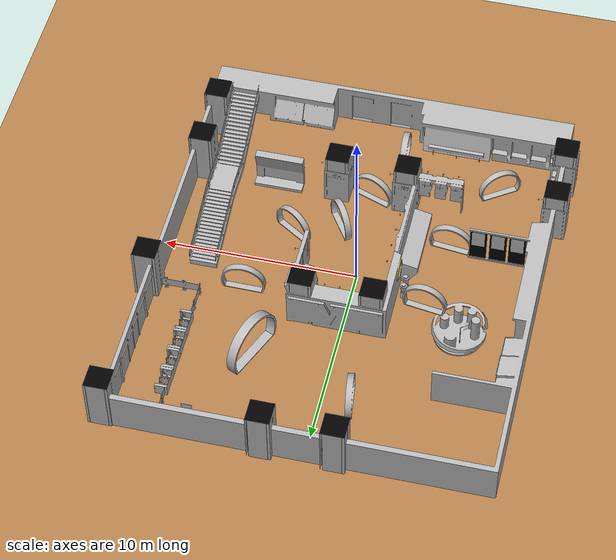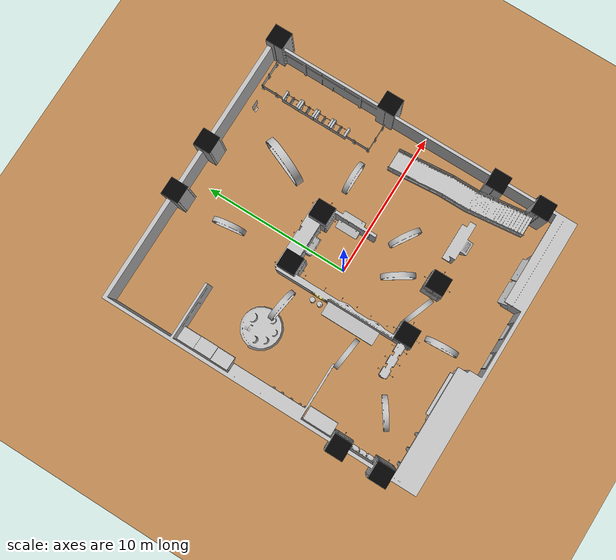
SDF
<?xml version="1.0" ?>
<sdf version='1.5'>
  <world name='default'>
    <light type="directional" name="point_light">
      <pose>0.0 0 15 0 0 0</pose>
      <cast_shadows>false</cast_shadows>
    </light>
    <model name='ground_plane'>
      <static>1</static>
      <link name='link'>
        <collision name='collision'>
          <geometry>
            <plane>
              <normal>0 0 1</normal>
              <size>100 100</size>
            </plane>
          </geometry>
          <surface>
            <friction>
              <ode>
                <mu>100</mu>
                <mu2>50</mu2>
              </ode>
              <torsional>
                <ode/>
              </torsional>
            </friction>
            <contact>
              <ode/>
            </contact>
            <bounce/>
          </surface>
          <max_contacts>10</max_contacts>
        </collision>
        <visual name='visual'>
          <cast_shadows>0</cast_shadows>
          <geometry>
            <plane>
              <normal>0 0 1</normal>
              <size>22 22</size>
            </plane>
          </geometry>
          <material>
            <script>
            <uri>model://texture/texture.material</uri>
            <name>Floor_Wood</name>
            </script>
          </material>
        </visual>
        <self_collide>0</self_collide>
        <enable_wind>0</enable_wind>
        <kinematic>0</kinematic>
      </link>
    </model>
    <physics name='default_physics' default='0' type='ode'>
      <gravity>0 0 -9.8066</gravity>
      <ode>
        <solver>
          <type>quick</type>
          <iters>150</iters>
          <sor>1.3</sor>
          <use_dynamic_moi_rescaling>0</use_dynamic_moi_rescaling>
        </solver>
        <constraints>
          <cfm>0.00001</cfm>
          <erp>0.2</erp>
          <contact_max_correcting_vel>1000</contact_max_correcting_vel>
          <contact_surface_layer>0.01</contact_surface_layer>
        </constraints>
      </ode>
      <max_step_size>0.004</max_step_size>
      <real_time_factor>1000.0</real_time_factor>
      <real_time_update_rate>250</real_time_update_rate>
      <magnetic_field>6.0e-6 2.3e-5 -4.2e-5</magnetic_field>
    </physics>
    <model name='room'>
      <link name='iscas_museum::link'>
        <inertial>
          <mass>15</mass>
        </inertial>
        <collision name='collision'>
          <pose frame=''>0 0 0 0 0 -1.57</pose>
          <geometry>
            <mesh>
              <uri>model://iscas_museum/meshes/ISCAS_museum.dae</uri>
            </mesh>
          </geometry>
          <max_contacts>10</max_contacts>
          <surface>
            <contact>
              <ode/>
            </contact>
            <bounce/>
            <friction>
              <torsional>
                <ode/>
              </torsional>
              <ode/>
            </friction>
          </surface>
        </collision>
        <visual name='visual'>
          <pose frame=''>0 0 0 0 0 -1.57</pose>
          <geometry>
            <mesh>
              <uri>model://iscas_museum/meshes/ISCAS_museum.dae</uri>
            </mesh>
          </geometry>
        </visual>
        <pose frame=''>0 0 0 0 -0 0</pose>
        <self_collide>0</self_collide>
        <enable_wind>0</enable_wind>
        <kinematic>0</kinematic>
      </link>
      <static>1</static>
    </model>
    <gravity>0 0 -9.8066</gravity>
    <magnetic_field>6e-06 2.3e-05 -4.2e-05</magnetic_field>
    <atmosphere type='adiabatic'/>
    <scene>
      <ambient>0.4 0.4 0.4 1</ambient>
      <background>0.7 0.7 0.7 1</background>
      <shadows>1</shadows>
    </scene>
    <wind/>
    <spherical_coordinates>
      <surface_model>EARTH_WGS84</surface_model>
      <latitude_deg>0</latitude_deg>
      <longitude_deg>0</longitude_deg>
      <elevation>0</elevation>
      <heading_deg>0</heading_deg>
    </spherical_coordinates>
    <model name='circle_gate_race_3'>
      <static>1</static>
      <link name='link'>
        <inertial>
          <mass>10</mass>
          <inertia>
            <ixx>10</ixx>
            <ixy>0</ixy>
            <ixz>0</ixz>
            <iyy>10</iyy>
            <iyz>0</iyz>
            <izz>10</izz>
          </inertia>
        </inertial>
        <collision name='collision'>
          <pose frame=''>0 0 0 0 -0 0</pose>
          <geometry>
            <mesh>
              <uri>model://circle_gate_race/meshes/gate.dae</uri>
              <scale>0.8 0.8 0.8</scale>
            </mesh>
          </geometry>
          <max_contacts>10</max_contacts>
          <surface>
            <contact>
              <ode/>
            </contact>
            <bounce/>
            <friction>
              <torsional>
                <ode/>
              </torsional>
              <ode/>
            </friction>
          </surface>
        </collision>
        <visual name='visual'>
          <pose frame=''>0 0 0 0 -0 0</pose>
          <geometry>
            <mesh>
              <uri>model://circle_gate_race/meshes/gate.dae</uri>
              <scale>0.8 0.8 0.8</scale>
            </mesh>
          </geometry>
          <material>
            <script>
              <uri>model://texture/texture.material</uri>
              <name>gate_texture</name>
            </script>
          </material>
        </visual>
        <self_collide>0</self_collide>
        <enable_wind>0</enable_wind>
        <kinematic>0</kinematic>
      </link>
      <pose frame=''>1.5 -3.1 0 0 -0 0.580225</pose>
    </model>
    <model name='circle_gate_race_4'>
      <static>1</static>
      <link name='link'>
        <inertial>
          <mass>10</mass>
          <inertia>
            <ixx>10</ixx>
            <ixy>0</ixy>
            <ixz>0</ixz>
            <iyy>10</iyy>
            <iyz>0</iyz>
            <izz>10</izz>
          </inertia>
        </inertial>
        <collision name='collision'>
          <pose frame=''>0 0 0 0 -0 0</pose>
          <geometry>
            <mesh>
              <uri>model://circle_gate_race/meshes/gate.dae</uri>
              <scale>0.8 0.8 0.8</scale>
            </mesh>
          </geometry>
          <max_contacts>10</max_contacts>
          <surface>
            <contact>
              <ode/>
            </contact>
            <bounce/>
            <friction>
              <torsional>
                <ode/>
              </torsional>
              <ode/>
            </friction>
          </surface>
        </collision>
        <visual name='visual'>
          <pose frame=''>0 0 0 0 -0 0</pose>
          <geometry>
            <mesh>
              <uri>model://circle_gate_race/meshes/gate.dae</uri>
              <scale>0.8 0.8 0.8</scale>
            </mesh>
          </geometry>
          <material>
            <script>
              <uri>model://texture/texture.material</uri>
              <name>gate_texture</name>
            </script>
          </material>
        </visual>
        <self_collide>0</self_collide>
        <enable_wind>0</enable_wind>
        <kinematic>0</kinematic>
      </link>
      <pose frame=''>0.3 -5.3 0 0 -0 1.21727</pose>

    </model>
    <model name='circle_gate_race_2'>
      <static>1</static>
      <link name='link'>
        <inertial>
          <mass>10</mass>
          <inertia>
            <ixx>10</ixx>
            <ixy>0</ixy>
            <ixz>0</ixz>
            <iyy>10</iyy>
            <iyz>0</iyz>
            <izz>10</izz>
          </inertia>
        </inertial>
        <collision name='collision'>
          <pose frame=''>0 0 0 0 -0 0</pose>
          <geometry>
            <mesh>
              <uri>model://circle_gate_race/meshes/gate.dae</uri>
              <scale>0.8 0.8 0.8</scale>
            </mesh>
          </geometry>
          <max_contacts>10</max_contacts>
          <surface>
            <contact>
              <ode/>
            </contact>
            <bounce/>
            <friction>
              <torsional>
                <ode/>
              </torsional>
              <ode/>
            </friction>
          </surface>
        </collision>
        <visual name='visual'>
          <pose frame=''>0 0 0 0 -0 0</pose>
          <geometry>
            <mesh>
              <uri>model://circle_gate_race/meshes/gate.dae</uri>
              <scale>0.8 0.8 0.8</scale>
            </mesh>
          </geometry>
          <material>
            <script>
              <uri>model://texture/texture.material</uri>
              <name>gate_texture</name>
            </script>
          </material>
        </visual>
        <self_collide>0</self_collide>
        <enable_wind>0</enable_wind>
        <kinematic>0</kinematic>
      </link>
      <pose frame=''>3.8 -2.2 0 0 -0 0.999678</pose>

    </model>
    <model name='circle_gate_race_1'>
      <static>1</static>
      <link name='link'>
        <inertial>
          <mass>10</mass>
          <inertia>
            <ixx>10</ixx>
            <ixy>0</ixy>
            <ixz>0</ixz>
            <iyy>10</iyy>
            <iyz>0</iyz>
            <izz>10</izz>
          </inertia>
        </inertial>
        <collision name='collision'>
          <pose frame=''>0 0 0 0 -0 0</pose>
          <geometry>
            <mesh>
              <uri>model://circle_gate_race/meshes/gate.dae</uri>
              <scale>0.8 0.8 0.8</scale>
            </mesh>
          </geometry>
          <max_contacts>10</max_contacts>
          <surface>
            <contact>
              <ode/>
            </contact>
            <bounce/>
            <friction>
              <torsional>
                <ode/>
              </torsional>
              <ode/>
            </friction>
          </surface>
        </collision>
        <visual name='visual'>
          <pose frame=''>0 0 0 0 -0 0</pose>
          <geometry>
            <mesh>
              <uri>model://circle_gate_race/meshes/gate.dae</uri>
              <scale>0.8 0.8 0.8</scale>
            </mesh>
          </geometry>
          <material>
            <script>
              <uri>model://texture/texture.material</uri>
              <name>gate_texture</name>
            </script>
          </material>
        </visual>
        <self_collide>0</self_collide>
        <enable_wind>0</enable_wind>
        <kinematic>0</kinematic>
      </link>
      <pose frame=''>5.2 2.5 0.8 0 -0 1.56345</pose>
    </model>
    <model name='circle_gate_race_5'>
      <static>1</static>
      <link name='link'>
        <inertial>
          <mass>10</mass>
          <inertia>
            <ixx>10</ixx>
            <ixy>0</ixy>
            <ixz>0</ixz>
            <iyy>10</iyy>
            <iyz>0</iyz>
            <izz>10</izz>
          </inertia>
        </inertial>
        <collision name='collision'>
          <pose frame=''>0 0 0 0 -0 0</pose>
          <geometry>
            <mesh>
              <uri>model://circle_gate_race/meshes/gate.dae</uri>
              <scale>0.8 0.8 0.8</scale>
            </mesh>
          </geometry>
          <max_contacts>10</max_contacts>
          <surface>
            <contact>
              <ode/>
            </contact>
            <bounce/>
            <friction>
              <torsional>
                <ode/>
              </torsional>
              <ode/>
            </friction>
          </surface>
        </collision>
        <visual name='visual'>
          <pose frame=''>0 0 0 0 -0 0</pose>
          <geometry>
            <mesh>
              <uri>model://circle_gate_race/meshes/gate.dae</uri>
              <scale>0.8 0.8 0.8</scale>
            </mesh>
          </geometry>
          <material>
            <script>
              <uri>model://texture/texture.material</uri>
              <name>gate_texture</name>
            </script>
          </material>
        </visual>
        <self_collide>0</self_collide>
        <enable_wind>0</enable_wind>
        <kinematic>0</kinematic>
      </link>
      <pose frame=''>-0.9 -7.6 0.8 0 -0 0.056272</pose>
    </model>
    <model name='circle_gate_race_6'>
      <static>1</static>
      <link name='link'>
        <inertial>
          <mass>10</mass>
          <inertia>
            <ixx>10</ixx>
            <ixy>0</ixy>
            <ixz>0</ixz>
            <iyy>10</iyy>
            <iyz>0</iyz>
            <izz>10</izz>
          </inertia>
        </inertial>
        <collision name='collision'>
          <pose frame=''>0 0 0 0 -0 0</pose>
          <geometry>
            <mesh>
              <uri>model://circle_gate_race/meshes/gate.dae</uri>
              <scale>0.8 0.8 0.8</scale>
            </mesh>
          </geometry>
          <max_contacts>10</max_contacts>
          <surface>
            <contact>
              <ode/>
            </contact>
            <bounce/>
            <friction>
              <torsional>
                <ode/>
              </torsional>
              <ode/>
            </friction>
          </surface>
        </collision>
        <visual name='visual'>
          <pose frame=''>0 0 0 0 -0 0</pose>
          <geometry>
            <mesh>
              <uri>model://circle_gate_race/meshes/gate.dae</uri>
              <scale>0.8 0.8 0.8</scale>
            </mesh>
          </geometry>
          <material>
            <script>
              <uri>model://texture/texture.material</uri>
              <name>gate_texture</name>
            </script>
          </material>
        </visual>
        <self_collide>0</self_collide>
        <enable_wind>0</enable_wind>
        <kinematic>0</kinematic>
      </link>
      <pose frame=''>-6.1 -6.8 0.3 0 0 -0.971679</pose>

    </model>
    <model name='circle_gate_race_7'>
      <static>1</static>
      <link name='link'>
        <inertial>
          <mass>10</mass>
          <inertia>
            <ixx>10</ixx>
            <ixy>0</ixy>
            <ixz>0</ixz>
            <iyy>10</iyy>
            <iyz>0</iyz>
            <izz>10</izz>
          </inertia>
        </inertial>
        <collision name='collision'>
          <pose frame=''>0 0 0 0 -0 0</pose>
          <geometry>
            <mesh>
              <uri>model://circle_gate_race/meshes/gate.dae</uri>
              <scale>0.8 0.8 0.8</scale>
            </mesh>
          </geometry>
          <max_contacts>10</max_contacts>
          <surface>
            <contact>
              <ode/>
            </contact>
            <bounce/>
            <friction>
              <torsional>
                <ode/>
              </torsional>
              <ode/>
            </friction>
          </surface>
        </collision>
        <visual name='visual'>
          <pose frame=''>0 0 0 0 -0 0</pose>
          <geometry>
            <mesh>
              <uri>model://circle_gate_race/meshes/gate.dae</uri>
              <scale>0.8 0.8 0.8</scale>
            </mesh>
          </geometry>
          <material>
            <script>
              <uri>model://texture/texture.material</uri>
              <name>gate_texture</name>
            </script>
          </material>
        </visual>
        <self_collide>0</self_collide>
        <enable_wind>0</enable_wind>
        <kinematic>0</kinematic>
      </link>
      <pose frame=''>-4.3 -2.9 0 0 0 -1.68827</pose>

    </model>
    <model name='circle_gate_race_8'>
      <static>1</static>
      <link name='link'>
        <inertial>
          <mass>10</mass>
          <inertia>
            <ixx>10</ixx>
            <ixy>0</ixy>
            <ixz>0</ixz>
            <iyy>10</iyy>
            <iyz>0</iyz>
            <izz>10</izz>
          </inertia>
        </inertial>
        <collision name='collision'>
          <pose frame=''>0 0 0 0 -0 0</pose>
          <geometry>
            <mesh>
              <uri>model://circle_gate_race/meshes/gate.dae</uri>
              <scale>0.8 0.8 0.8</scale>
            </mesh>
          </geometry>
          <max_contacts>10</max_contacts>
          <surface>
            <contact>
              <ode/>
            </contact>
            <bounce/>
            <friction>
              <torsional>
                <ode/>
              </torsional>
              <ode/>
            </friction>
          </surface>
        </collision>
        <visual name='visual'>
          <pose frame=''>0 0 0 0 -0 0</pose>
          <geometry>
            <mesh>
              <uri>model://circle_gate_race/meshes/gate.dae</uri>
              <scale>0.8 0.8 0.8</scale>
            </mesh>
          </geometry>
          <material>
            <script>
              <uri>model://texture/texture.material</uri>
              <name>gate_texture</name>
            </script>
          </material>
        </visual>
        <self_collide>0</self_collide>
        <enable_wind>0</enable_wind>
        <kinematic>0</kinematic>
      </link>
      <pose frame=''>-3.9 2.0 1.1 0 -0 1.42067</pose>
    </model>
    <model name='circle_gate_race_9'>
      <static>1</static>
      <link name='link'>
        <inertial>
          <mass>10</mass>
          <inertia>
            <ixx>10</ixx>
            <ixy>0</ixy>
            <ixz>0</ixz>
            <iyy>10</iyy>
            <iyz>0</iyz>
            <izz>10</izz>
          </inertia>
        </inertial>
        <collision name='collision'>
          <pose frame=''>0 0 0 0 -0 0</pose>
          <geometry>
            <mesh>
              <uri>model://circle_gate_race/meshes/gate.dae</uri>
              <scale>0.8 0.8 0.8</scale>
            </mesh>
          </geometry>
          <max_contacts>10</max_contacts>
          <surface>
            <contact>
              <ode/>
            </contact>
            <bounce/>
            <friction>
              <torsional>
                <ode/>
              </torsional>
              <ode/>
            </friction>
          </surface>
        </collision>
        <visual name='visual'>
          <pose frame=''>0 0 0 0 -0 0</pose>
          <geometry>
            <mesh>
              <uri>model://circle_gate_race/meshes/gate.dae</uri>
              <scale>0.8 0.8 0.8</scale>
            </mesh>
          </geometry>
          <material>
            <script>
              <uri>model://texture/texture.material</uri>
              <name>gate_texture</name>
            </script>
          </material>
        </visual>
        <self_collide>0</self_collide>
        <enable_wind>0</enable_wind>
        <kinematic>0</kinematic>
      </link>
      <pose frame=''>-1.4 7.6 0 0 -0 0.136466</pose>
    </model>
    <model name='circle_gate_race_0'>
      <static>1</static>
      <link name='link'>
        <inertial>
          <mass>10</mass>
          <inertia>
            <ixx>10</ixx>
            <ixy>0</ixy>
            <ixz>0</ixz>
            <iyy>10</iyy>
            <iyz>0</iyz>
            <izz>10</izz>
          </inertia>
        </inertial>
        <collision name='collision'>
          <pose frame=''>0 0 0 0 -0 0</pose>
          <geometry>
            <mesh>
              <uri>model://circle_gate_race/meshes/gate.dae</uri>
              <scale>1.2 1.2 1.2</scale>
            </mesh>
          </geometry>
          <max_contacts>10</max_contacts>
          <surface>
            <contact>
              <ode/>
            </contact>
            <bounce/>
            <friction>
              <torsional>
                <ode/>
              </torsional>
              <ode/>
            </friction>
          </surface>
        </collision>
        <visual name='visual'>
          <pose frame=''>0 0 0 0 -0 0</pose>
          <geometry>
            <mesh>
              <uri>model://circle_gate_race/meshes/gate.dae</uri>
              <scale>1.2 1.2 1.2</scale>
            </mesh>
          </geometry>
          <material>
            <script>
              <uri>model://texture/texture.material</uri>
              <name>gate_texture</name>
            </script>
          </material>
        </visual>
        <self_collide>0</self_collide>
        <enable_wind>0</enable_wind>
        <kinematic>0</kinematic>
      </link>
      <pose frame=''>3.7 6.6 1.2 0 0 -0.393424</pose>
    </model>
    <gui fullscreen='0'>
      <camera name='user_camera'>
        <pose frame=''>8.37267 18.885 8.01218 0 0.503642 -2.01078</pose>
        <view_controller>orbit</view_controller>
        <projection_type>perspective</projection_type>
      </camera>
    </gui>
  </world>
</sdf>
